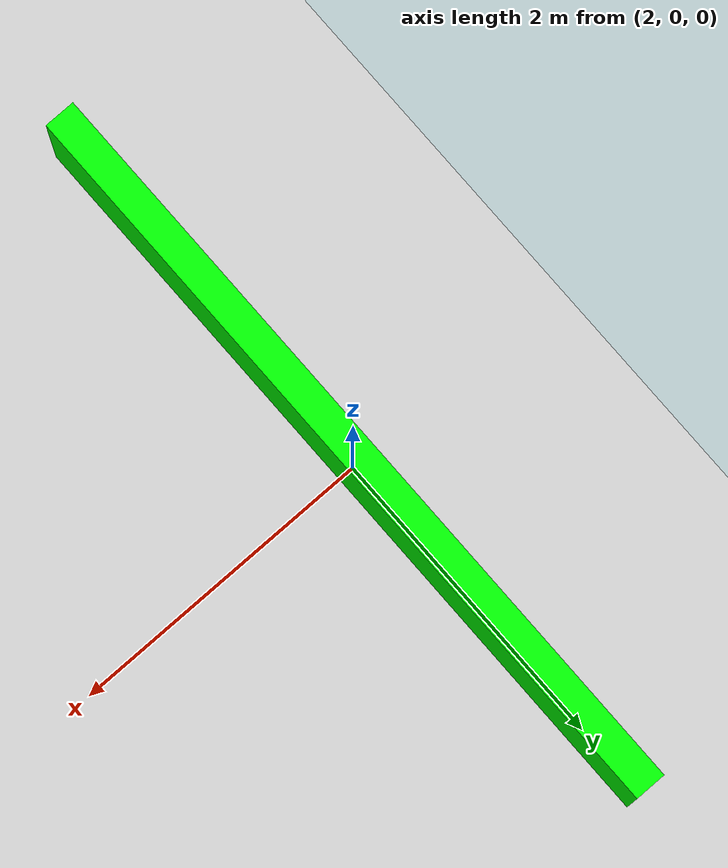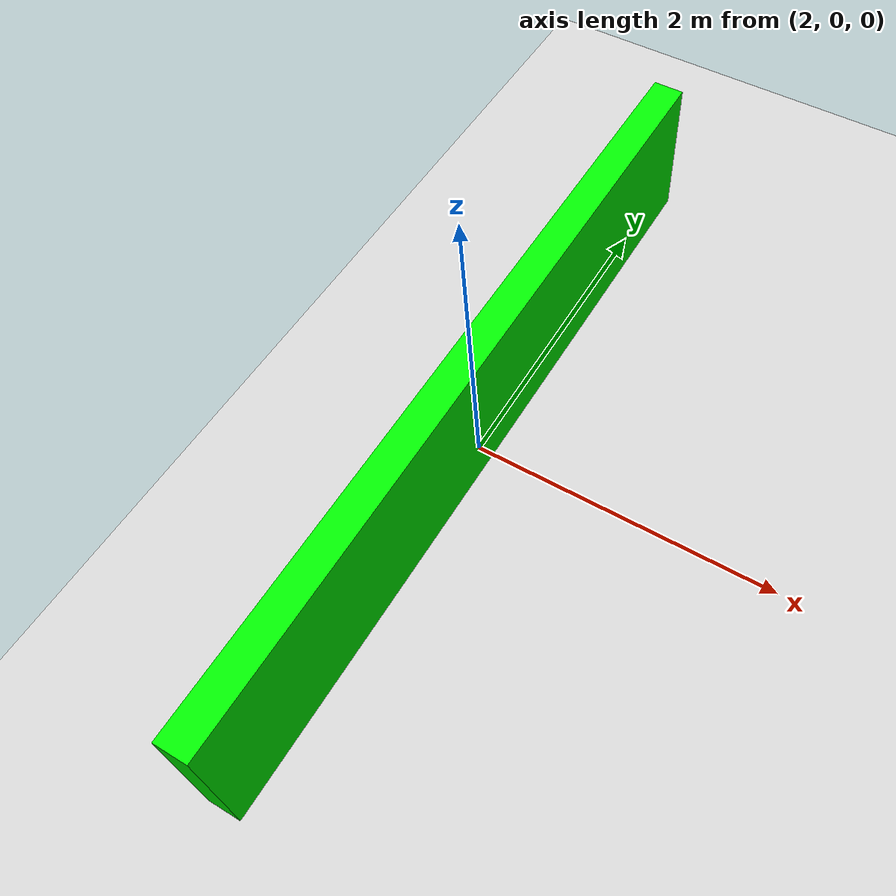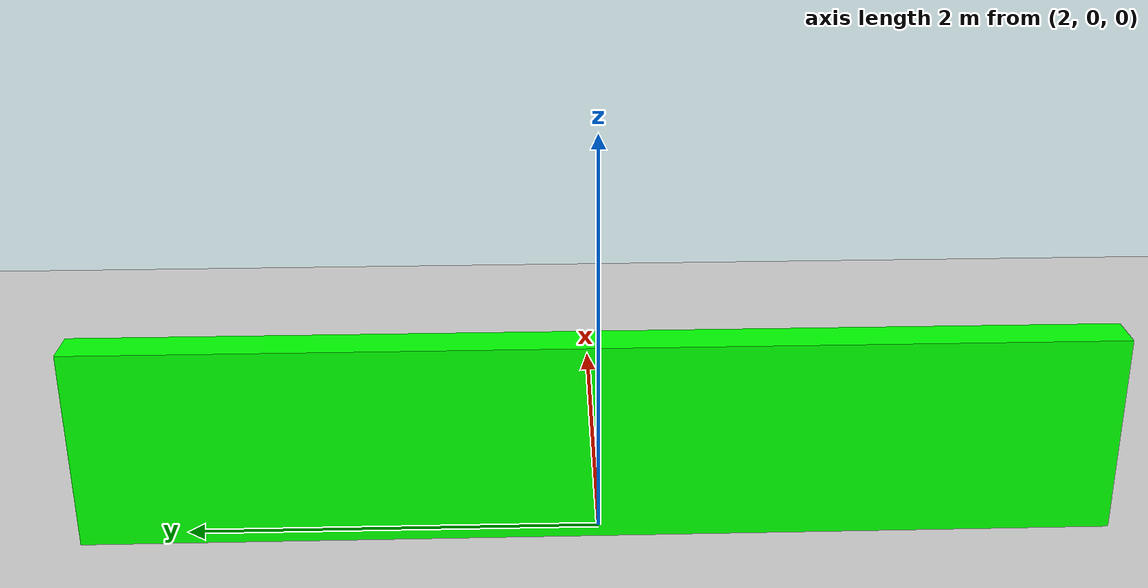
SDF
<?xml version="1.0" ?>
<sdf version="1.9">
    <world name="my_world">
        <model name="ground_plane">
            <static>true</static>
            <link name="link">
                <collision name="collision">
                    <geometry>
                        <plane>
                            <normal>0 0 1</normal>
                            <size>100 100</size>
                        </plane>
                    </geometry>
                </collision>
                <visual name="visual">
                    <geometry>
                        <plane>
                            <normal>0 0 1</normal>
                            <size>100 100</size>
                        </plane>
                    </geometry>
                    <material>
                        <diffuse>0.8 0.8 0.8 1</diffuse>
                    </material>
                </visual>
            </link>
        </model>
        <model name="wall">
            <pose>2 0 0.5 0 0 0</pose>
            <static>true</static>
            <link name="link">
                <collision name="collision">
                    <geometry>
                        <box>
                            <size>0.2 5 1</size>
                        </box>
                    </geometry>
                </collision>
                <visual name="visual">
                    <geometry>
                        <box>
                            <size>0.2 5 1</size>
                        </box>
                    </geometry>
                    <material>
                        <diffuse>0 1 0 1</diffuse>
                    </material>
                </visual>
            </link>
        </model>
        <light type="directional" name="sun">
            <cast_shadows>true</cast_shadows>
            <pose>0 0 10 0 0 0</pose>
            <diffuse>0.8 0.8 0.8 1</diffuse>
            <specular>0.2 0.2 0.2 1</specular>
            <direction>0 -0.5 -1</direction>
        </light>
        <physics name="default_physics" type="ode">
            <max_step_size>0.001</max_step_size>
            <real_time_factor>1</real_time_factor>
            <real_time_update_rate>1000</real_time_update_rate>
        </physics>
    </world>
</sdf>
